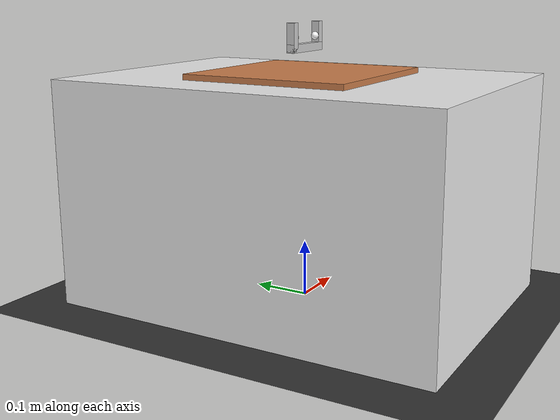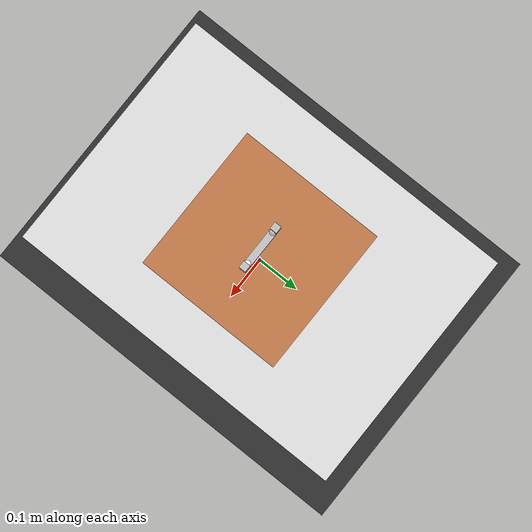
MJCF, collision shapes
<?xml version="1.0" encoding="utf-8"?>
<!--This file is modified based on the OpenAI Gym source code-->

<mujoco>
	<compiler angle="radian" coordinate="local" meshdir="../robot/meshes" texturedir="../textures"/>
	<option timestep="0.002">
		<flag warmstart="enable"/>
	</option>
	<size njmax="800" nconmax="800"/>

	<include file="../robot/gripper/rethink_gripper_setup.xml"/>

	<asset>
        <texture type="skybox" builtin="gradient" rgb1="0.44 0.85 0.56" rgb2="0.46 0.87 0.58" width="32" height="32"/>
        <texture name="texture_block" file="block.png" gridsize="3 4" gridlayout=".U..LFRB.D.."/>

        <material name="floor_mat" specular="0" shininess="0.5" reflectance="0" rgba="0.2 0.2 0.2 1"/>
        <material name="table_mat" specular="0" shininess="0.5" reflectance="0" rgba="0.93 0.93 0.93 1"/>
        <material name="box_mat" specular="0" shininess="0.5" reflectance="0" rgba="0.8 0.5 0.3 1.0"/>

		<mesh file="../../objects/meshes/hook.stl" name="hook_mesh" scale="0.0015 0.0015 0.0025"/>
		<texture type="skybox" file="metal.png" name="steel-metal"/>
		<material name="metal" reflectance="1.0" shininess="1.0" specular="1.0" texrepeat="1 1" texture="steel-metal" texuniform="true"/>
		<material name="hook1_mat" specular="0" shininess="0.5" reflectance="0" rgba="0.8 0.8 0.8 1"/>
		<material name="hook2_mat" specular="0" shininess="0.5" reflectance="0" rgba="0.2 0.2 0.2 1"/>
	</asset>

	<equality>
		<weld body1="mocap" body2="eef" solimp="0.9 0.95 0.001" solref="0.02 1"/>
	</equality>

	<worldbody>
		<body mocap="true" name="mocap" pos="0 0 0">
			<geom conaffinity="0" contype="0" pos="0 0 0" rgba="0 0.5 0.5 0.9" size="0.005 0.005 0.005" type="box"/>
			<geom conaffinity="0" contype="0" pos="0 0 0" rgba="1 0 0 0.1" size="0.05 0.005 0.005" type="box"/>
			<geom conaffinity="0" contype="0" pos="0 0 0" rgba="0 1 0 0.1" size="0.005 0.05 0.005" type="box"/>
			<geom conaffinity="0" contype="0" pos="0 0 0" rgba="0 0 1 0.1" size="0.005 0.005 0.05" type="box"/>
		</body>
		<geom name="floor0" pos="0.0 0.0 0" size="0.85 0.7 1" type="plane" condim="3" material="floor_mat"/>
		<body name="floor0" pos="0.0 0.0 0">
			<site name="target_gripper" pos="0 0 0" size="0.05 0.05 0.05" rgba="1 0 0 0" type="box"/>
			<site name="target_b" pos="0 0 0.5" size="0.02 0.02 0.02" rgba="0 0 1 0" type="sphere"/>
		</body>

		<include file="../robot/gripper/rethink_gripper.xml"/>

		<body pos="-0.0 0.0 0.2" name="table0">
			<geom size="0.25 0.35 0.2" type="box" mass="2000" material="table_mat"/>
		</body>

		<body name="box" pos="0.0 0.0 0.405">
			<geom size="0.15 0.15 0.005" pos="0 0 0" type="box" material="box_mat"/>
		</body>

		<body name="hook1" pos="0 0 0.45">
			<joint name="hook1_joint" pos="0 0 0" type="free" damping="0.01"/>
			<site type="sphere" rgba="1 1 1 1" size="0.007" pos="0 0 0" name="hook1_centre_site"/>
			<site type="sphere" rgba="1 1 1 1" size="0.007" pos="0.036 0 0.018" name="hook1_left_site"/>
			<site type="sphere" rgba="1 1 1 1" size="0.007" pos="0.043 0 0.025" name="hook1_left_site_grip"/>
			<site type="sphere" rgba="1 1 1 1" size="0.007" pos="-0.036 0 0.018" name="hook1_right_site"/>
			<site type="sphere" rgba="1 1 1 1" size="0.007" pos="-0.043 0 0.025" name="hook1_right_site_grip"/>
			<geom size="0.05 0.007 0.007" type="box" condim="3" material="hook1_mat" mass="0.01" />
			<geom size="0.007 0.007 0.025" pos="0.043 0 0.018" type="box" condim="3" material="hook1_mat" mass="0.01" />
			<geom size="0.007 0.007 0.025" pos="-0.043 0 0.018" type="box" condim="3" material="hook1_mat" mass="0.01" />
		</body>
		<body name="hook2" pos="0 0 0.45">
			<joint name="hook2_joint" pos="0 0 0" type="free" damping="0.01"/>
			<site type="sphere" rgba="1 1 1 1" size="0.007" pos="0 0 0" name="hook2_centre_site"/>
			<site type="sphere" rgba="1 1 1 1" size="0.007" pos="0.036 0 0.018" name="hook2_left_site"/>
			<site type="sphere" rgba="1 1 1 1" size="0.007" pos="-0.036 0 0.018" name="hook2_right_site"/>
			<geom size="0.05 0.007 0.007" type="box" condim="3" material="hook2_mat" mass="0.01" />
			<geom size="0.007 0.007 0.025" pos="0.043 0 0.018" type="box" condim="3" material="hook2_mat" mass="0.01" />
			<geom size="0.007 0.007 0.025" pos="-0.043 0 0.018" type="box" condim="3" material="hook2_mat" mass="0.01" />
		</body>

		<light directional="true" ambient="0.2 0.2 0.2" diffuse="0.8 0.8 0.8" specular="0.3 0.3 0.3" castshadow="false" pos="0 0 4" dir="0 0 -1" name="light0"/>
		<camera mode="fixed" name="frontview" pos="0.2 0 0.8" quat="0.69034553 0.15304592 0.15304592 0.69034553"/>
		<camera mode="fixed" name="topview" pos="0.1 0 0.8" quat="0.70441603 0.06162842 0.06162842 0.70441603"/>
		<camera mode="fixed" name="backview" pos="-0.2 0 0.8" quat="0.69034553 0.15304592 -0.15304592 -0.69034553"/>
		<camera mode="fixed" name="wideview" pos="0.6 0 1.4" quat="0.67437972 0.21263111 0.21263111 0.67437972"/>
		<camera mode="fixed" name="sideview" pos="0.4 0 0.6" quat="0.54167522 0.45451948 0.45451948 0.54167522"/>
	</worldbody>
</mujoco>

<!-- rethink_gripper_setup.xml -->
<mujoco model="base">
    <asset>
        <mesh name="electric_gripper_base" file="rethink_gripper/electric_gripper_base.stl" />
        <mesh name="standard_narrow" file="rethink_gripper/standard_narrow.stl" />
        <mesh name="half_round_tip" file="rethink_gripper/half_round_tip.stl" />
        <mesh name="connector_plate" file="rethink_gripper/connector_plate.stl" />
    </asset>
    <actuator>
        <position ctrllimited="true" ctrlrange="-0.02 0.2" joint="r_finger_joint" kp="1000" name="gripper_r_finger_joint" forcelimited="true" forcerange="-20 30"/>
        <position ctrllimited="true" ctrlrange="-0.2 0.02" joint="l_finger_joint" kp="1000" name="gripper_l_finger_joint" forcelimited="true" forcerange="-20 30"/>
    </actuator>
    <sensor>
        <force name="force_ee" site="ft_frame"/>
        <torque name="torque_ee" site="ft_frame"/>
    </sensor>
</mujoco>

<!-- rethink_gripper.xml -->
<mujoco model="base">
    <body name="gripper_base" pos="0 0 0">
        <site name="ft_frame" pos="0 0 0" size="0.01 0.01 0.01" rgba="1 0 0 0" type="sphere" group="1"/>
        <inertial pos="0 0 0" quat="-0.5 0.5 0.5 0.5" mass="0.3" diaginertia="3e-08 2e-08 2e-08" />
        <geom type="mesh" contype="0" conaffinity="0" group="1" mesh="connector_plate" name="connector_plate" pos="0 0 0.0018" rgba="0.499 0.499 0.499 1"/>
        <geom type="mesh" contype="0" conaffinity="0" group="1" mesh="electric_gripper_base" name="electric_gripper_base" pos="0 0 0.0194" rgba="0.499 0.499 0.499 1"/>
        <geom size="0.029 0.05" quat="0 0 0.707107 0.707107" type="cylinder" group="0" name="gripper_base_col" pos="0.004 0.0 0.04"/>
        <!-- This site was added for visualization. -->
        <camera mode="fixed" name="onhandview" pos="0.1 0 0" quat="0.173648178 0 0.984807753 0"/>
        <body name="eef" pos="0 0 0.109" quat="0.707105 0 0 -0.707105">
            <site name="grip_site" pos="0 0 0" size="0.01 0.01 0.01" rgba="1 0 0 0" type="sphere" group="1"/>
            <site name="ee_x" pos="0.1 0 0" size="0.005 .1"  quat="0.707105  0 0.707108 0 " rgba="1 0 0 0" type="cylinder" group="1"/>
            <site name="ee_y" pos="0 0.1 0" size="0.005 .1" quat="0.707105 0.707108 0 0" rgba="0 1 0 0" type="cylinder" group="1"/>
            <site name="ee_z" pos="0 0 0.1" size="0.005 .1" quat="1 0 0 0" rgba="0 0 1 0" type="cylinder" group="1"/>
            <!-- This site was added for visualization. -->
            <site name="grip_site_cylinder" pos="0 0 0" size="0.005 10" rgba="0 1 0 0" type="cylinder" group="1"/>
        </body>
        <joint name="eef_joint" pos="0 0 0" type="free" damping="0.01"/>
        <body name="l_finger" pos="0 0.01 0.0444">
            <inertial pos="0 0 0" quat="0 0 0 -1" mass="0.02" diaginertia="0.01 0.01 0.01" />
            <joint name="l_finger_joint" pos="0 0 0" axis="0 1 0" type="slide" limited="true" range="-0.02 0.2" damping="100" armature="1.0" frictionloss="1.0"/>
            <geom name="l_finger" quat="0 0 0 -1" type="mesh" contype="0" conaffinity="0" group="1" mesh="standard_narrow" rgba="0.499 0.499 0.499 1"/>
            <geom size="0.005 0.00675 0.0375" pos="0 0.01725 0.04" quat="0 0 0 -1" type="box" group="0" conaffinity="1" contype="0" name="l_finger_g0" friction="0 0 0"/>
            <geom size="0.005 0.025 0.0085" pos="-0.005 -0.003 0.0083" quat="0 0 0 -1" type="box" group="0" conaffinity="1" contype="0" name="l_finger_g1" friction="0 0 0"/>
            <body name="l_finger_tip" pos="0 0.01725 0.075">
                <inertial pos="0 0 0" quat="0 0 0 1" mass="0.01" diaginertia="0.01 0.01 0.01" />
                <site name="l_finger_tip_site" pos="0 0 0" size="0.01 0.01 0.01" rgba="1 0 0 0" type="sphere" group="1"/>
                <geom name="l_fingertip_g0_vis" quat="0 0 0 1" type="mesh" contype="0" conaffinity="0" group="1" mesh="half_round_tip" rgba="0.499 0.499 0.499 1"/>
                <geom size="0.004 0.004 0.0185" pos="0 -0.0045 -0.015" quat="0 0 0 -1" type="box" group="0"  conaffinity="1" contype="0" name="l_fingertip_g0"/>
                <geom size="0.0035 0.004 0.0165" pos="0 -0.0047 -0.017" type="box"  conaffinity="1" contype="0" name="l_fingerpad_g0"/>
            </body>
        </body>
        <body name="r_finger" pos="0 -0.01 0.0444">
            <inertial pos="0 0 0" mass="0.02" diaginertia="0.01 0.01 0.01" />
            <joint name="r_finger_joint" pos="0 0 0" axis="0 1 0" type="slide" limited="true" range="-0.2 0.02" damping="100" armature="1.0" frictionloss="1.0"/>
            <geom name="r_finger" type="mesh" contype="0" conaffinity="0" group="1" mesh="standard_narrow" rgba="0.499 0.499 0.499 1"/>
            <geom size="0.005 0.00675 0.0375" pos="0 -0.01725 0.04" type="box" group="0" conaffinity="1" contype="0" name="r_finger_g0" friction="0 0 0"/>
            <geom size="0.005 0.025 0.0085" pos="0.005 0.003 0.0083" type="box" group="0" conaffinity="1" contype="0" name="r_finger_g1" friction="0 0 0"/>
            <body name="r_finger_tip" pos="0 -0.01725 0.075">
                <inertial pos="0 0 0" mass="0.01" diaginertia="0.01 0.01 0.01" />
                <site name="r_finger_tip_site" pos="0 0 0" size="0.01 0.01 0.01" rgba="1 0 0 0" type="sphere" group="1"/>
                <geom name="r_fingertip_g0_vis" type="mesh" contype="0" conaffinity="0" group="1" mesh="half_round_tip" rgba="0.499 0.499 0.499 1"/>
                <geom size="0.004 0.004 0.0185" pos="0 0.0045 -0.015" type="box" group="0" conaffinity="1" contype="0" name="r_fingertip_g0"/>
                <geom size="0.0035 0.004 0.0165" pos="0 0.0047 -0.017" type="box"  conaffinity="1" contype="0" name="r_fingerpad_g0"/>
            </body>
        </body>
    </body>
</mujoco>
